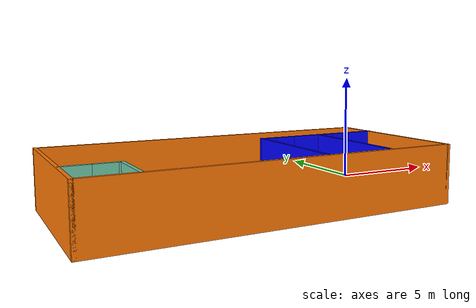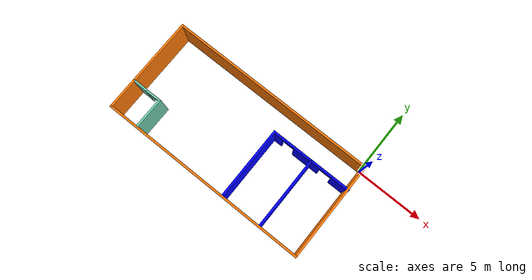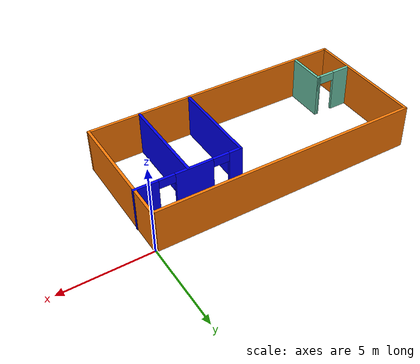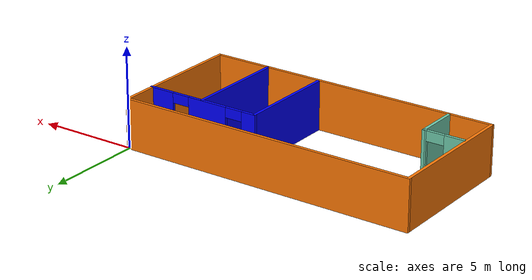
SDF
<?xml version='1.0'?>
<sdf version='1.6'>
  <model name='lab_space'>
    <pose frame=''>-7.48487 -3.5 0 0 -0 0</pose>
    <link name='Wall_0'>
      <collision name='Wall_0_Collision'>
        <geometry>
          <box>
            <size>15.15 0.15 2.5</size>
          </box>
        </geometry>
        <pose frame=''>0 0 1.25 0 -0 0</pose>
      </collision>
      <visual name='Wall_0_Visual'>
        <pose frame=''>0 0 1.25 0 -0 0</pose>
        <geometry>
          <box>
            <size>15.15 0.15 2.5</size>
          </box>
        </geometry>
        <material>
          <script>
            <uri>file://media/materials/scripts/gazebo.material</uri>
            <name>Gazebo/Grey</name>
          </script>
          <ambient>0.996078 0.47451 0.0196078 1</ambient>
        </material>
        <meta>
          <layer>0</layer>
        </meta>
      </visual>
      <pose frame=''>-0.015126 3.5 0 0 -0 3.14159</pose>
    </link>
    <link name='Wall_10'>
      <collision name='Wall_10_Collision'>
        <geometry>
          <box>
            <size>5.25 0.15 2.5</size>
          </box>
        </geometry>
        <pose frame=''>0 0 1.25 0 -0 0</pose>
      </collision>
      <visual name='Wall_10_Visual'>
        <pose frame=''>0 0 1.25 0 -0 0</pose>
        <geometry>
          <box>
            <size>5.25 0.15 2.5</size>
          </box>
        </geometry>
        <material>
          <script>
            <uri>file://media/materials/scripts/gazebo.material</uri>
            <name>Gazebo/Grey</name>
          </script>
          <ambient>0 0 1 1</ambient>
        </material>
        <meta>
          <layer>0</layer>
        </meta>
      </visual>
      <pose frame=''>1.6655 -0.845567 0 0 0 -1.5708</pose>
    </link>
    <link name='Wall_12'>
      <collision name='Wall_12_Collision'>
        <geometry>
          <box>
            <size>5.25 0.15 2.5</size>
          </box>
        </geometry>
        <pose frame=''>0 0 1.25 0 -0 0</pose>
      </collision>
      <visual name='Wall_12_Visual'>
        <pose frame=''>0 0 1.25 0 -0 0</pose>
        <geometry>
          <box>
            <size>5.25 0.15 2.5</size>
          </box>
        </geometry>
        <material>
          <script>
            <uri>file://media/materials/scripts/gazebo.material</uri>
            <name>Gazebo/Grey</name>
          </script>
          <ambient>0 0 1 1</ambient>
        </material>
        <meta>
          <layer>0</layer>
        </meta>
      </visual>
      <pose frame=''>4.6155 -0.885567 0 0 0 -1.5708</pose>
    </link>
    <link name='Wall_2'>
      <collision name='Wall_2_Collision'>
        <geometry>
          <box>
            <size>7.15 0.15 2.5</size>
          </box>
        </geometry>
        <pose frame=''>0 0 1.25 0 -0 0</pose>
      </collision>
      <visual name='Wall_2_Visual'>
        <pose frame=''>0 0 1.25 0 -0 0</pose>
        <geometry>
          <box>
            <size>7.15 0.15 2.5</size>
          </box>
        </geometry>
        <material>
          <script>
            <uri>file://media/materials/scripts/gazebo.material</uri>
            <name>Gazebo/Grey</name>
          </script>
          <ambient>0.996078 0.47451 0.0196078 1</ambient>
        </material>
        <meta>
          <layer>0</layer>
        </meta>
      </visual>
      <pose frame=''>-7.51513 0 0 0 0 -1.5708</pose>
    </link>
    <link name='Wall_3'>
      <collision name='Wall_3_Collision'>
        <geometry>
          <box>
            <size>15.1508 0.15 2.5</size>
          </box>
        </geometry>
        <pose frame=''>0 0 1.25 0 -0 0</pose>
      </collision>
      <visual name='Wall_3_Visual'>
        <pose frame=''>0 0 1.25 0 -0 0</pose>
        <geometry>
          <box>
            <size>15.1508 0.15 2.5</size>
          </box>
        </geometry>
        <material>
          <script>
            <uri>file://media/materials/scripts/gazebo.material</uri>
            <name>Gazebo/Grey</name>
          </script>
          <ambient>0.996078 0.47451 0.0196078 1</ambient>
        </material>
        <meta>
          <layer>0</layer>
        </meta>
      </visual>
      <pose frame=''>-0.015126 -3.5 0 0 -0 0</pose>
    </link>
    <link name='Wall_4'>
      <collision name='Wall_4_Collision'>
        <geometry>
          <box>
            <size>7.15 0.15 2.5</size>
          </box>
        </geometry>
        <pose frame=''>0 0 1.25 0 -0 0</pose>
      </collision>
      <visual name='Wall_4_Visual'>
        <pose frame=''>0 0 1.25 0 -0 0</pose>
        <geometry>
          <box>
            <size>7.15 0.15 2.5</size>
          </box>
        </geometry>
        <material>
          <script>
            <uri>file://media/materials/scripts/gazebo.material</uri>
            <name>Gazebo/Grey</name>
          </script>
          <ambient>0.996078 0.47451 0.0196078 1</ambient>
        </material>
        <meta>
          <layer>0</layer>
        </meta>
      </visual>
      <pose frame=''>7.48487 0 0 0 -0 1.5708</pose>
    </link>
    <link name='Wall_6'>
      <pose frame=''>-6.4145 -1.29557 0 0 -0 0</pose>
      <visual name='Wall_6_Visual_0'>
        <pose frame=''>-0.5625 0 1.25 0 -0 0</pose>
        <geometry>
          <box>
            <size>1.125 0.15 2.5</size>
          </box>
        </geometry>
        <material>
          <script>
            <uri>file://media/materials/scripts/gazebo.material</uri>
            <name>Gazebo/Grey</name>
          </script>
          <ambient>0.435294 0.796078 0.67451 1</ambient>
        </material>
        <meta>
          <layer>0</layer>
        </meta>
      </visual>
      <collision name='Wall_6_Collision_0'>
        <geometry>
          <box>
            <size>1.125 0.15 2.5</size>
          </box>
        </geometry>
        <pose frame=''>-0.5625 0 1.25 0 -0 0</pose>
      </collision>
      <visual name='Wall_6_Visual_1'>
        <pose frame=''>1.0125 0 1.25 0 -0 0</pose>
        <geometry>
          <box>
            <size>0.225 0.15 2.5</size>
          </box>
        </geometry>
        <material>
          <script>
            <uri>file://media/materials/scripts/gazebo.material</uri>
            <name>Gazebo/Grey</name>
          </script>
          <ambient>0.435294 0.796078 0.67451 1</ambient>
        </material>
        <meta>
          <layer>0</layer>
        </meta>
      </visual>
      <collision name='Wall_6_Collision_1'>
        <geometry>
          <box>
            <size>0.225 0.15 2.5</size>
          </box>
        </geometry>
        <pose frame=''>1.0125 0 1.25 0 -0 0</pose>
      </collision>
      <visual name='Wall_6_Visual_2'>
        <pose frame=''>0.45 0 2.25 0 -0 0</pose>
        <geometry>
          <box>
            <size>0.9 0.15 0.5</size>
          </box>
        </geometry>
        <material>
          <script>
            <uri>file://media/materials/scripts/gazebo.material</uri>
            <name>Gazebo/Grey</name>
          </script>
          <ambient>0.435294 0.796078 0.67451 1</ambient>
        </material>
        <meta>
          <layer>0</layer>
        </meta>
      </visual>
      <collision name='Wall_6_Collision_2'>
        <geometry>
          <box>
            <size>0.9 0.15 0.5</size>
          </box>
        </geometry>
        <pose frame=''>0.45 0 2.25 0 -0 0</pose>
      </collision>
    </link>
    <link name='Wall_7'>
      <collision name='Wall_7_Collision'>
        <geometry>
          <box>
            <size>2.25 0.15 2.5</size>
          </box>
        </geometry>
        <pose frame=''>0 0 1.25 0 -0 0</pose>
      </collision>
      <visual name='Wall_7_Visual'>
        <pose frame=''>0 0 1.25 0 -0 0</pose>
        <geometry>
          <box>
            <size>2.25 0.15 2.5</size>
          </box>
        </geometry>
        <material>
          <script>
            <uri>file://media/materials/scripts/gazebo.material</uri>
            <name>Gazebo/Grey</name>
          </script>
          <ambient>0.435294 0.796078 0.67451 1</ambient>
        </material>
        <meta>
          <layer>0</layer>
        </meta>
      </visual>
      <pose frame=''>-5.3645 -2.34557 0 0 0 -1.5708</pose>
    </link>
    <link name='Wall_9'>
      <pose frame=''>4.5905 1.70443 0 0 -0 3.14159</pose>
      <visual name='Wall_9_Visual_0'>
        <pose frame=''>-2.3275 0 1.25 0 -0 0</pose>
        <geometry>
          <box>
            <size>1.345 0.15 2.5</size>
          </box>
        </geometry>
        <material>
          <script>
            <uri>file://media/materials/scripts/gazebo.material</uri>
            <name>Gazebo/Grey</name>
          </script>
          <ambient>0 0 1 1</ambient>
        </material>
        <meta>
          <layer>0</layer>
        </meta>
      </visual>
      <collision name='Wall_9_Collision_0'>
        <geometry>
          <box>
            <size>1.345 0.15 2.5</size>
          </box>
        </geometry>
        <pose frame=''>-2.3275 0 1.25 0 -0 0</pose>
      </collision>
      <visual name='Wall_9_Visual_1'>
        <pose frame=''>0.295 0 1.25 0 -0 0</pose>
        <geometry>
          <box>
            <size>2.1 0.15 2.5</size>
          </box>
        </geometry>
        <material>
          <script>
            <uri>file://media/materials/scripts/gazebo.material</uri>
            <name>Gazebo/Grey</name>
          </script>
          <ambient>0 0 1 1</ambient>
        </material>
        <meta>
          <layer>0</layer>
        </meta>
      </visual>
      <collision name='Wall_9_Collision_1'>
        <geometry>
          <box>
            <size>2.1 0.15 2.5</size>
          </box>
        </geometry>
        <pose frame=''>0.295 0 1.25 0 -0 0</pose>
      </collision>
      <visual name='Wall_9_Visual_2'>
        <pose frame=''>2.6225 0 1.25 0 -0 0</pose>
        <geometry>
          <box>
            <size>0.755 0.15 2.5</size>
          </box>
        </geometry>
        <material>
          <script>
            <uri>file://media/materials/scripts/gazebo.material</uri>
            <name>Gazebo/Grey</name>
          </script>
          <ambient>0 0 1 1</ambient>
        </material>
        <meta>
          <layer>0</layer>
        </meta>
      </visual>
      <collision name='Wall_9_Collision_2'>
        <geometry>
          <box>
            <size>0.755 0.15 2.5</size>
          </box>
        </geometry>
        <pose frame=''>2.6225 0 1.25 0 -0 0</pose>
      </collision>
      <visual name='Wall_9_Visual_3'>
        <pose frame=''>-1.205 0 2.25 0 -0 0</pose>
        <geometry>
          <box>
            <size>0.9 0.15 0.5</size>
          </box>
        </geometry>
        <material>
          <script>
            <uri>file://media/materials/scripts/gazebo.material</uri>
            <name>Gazebo/Grey</name>
          </script>
          <ambient>0 0 1 1</ambient>
        </material>
        <meta>
          <layer>0</layer>
        </meta>
      </visual>
      <collision name='Wall_9_Collision_3'>
        <geometry>
          <box>
            <size>0.9 0.15 0.5</size>
          </box>
        </geometry>
        <pose frame=''>-1.205 0 2.25 0 -0 0</pose>
      </collision>
      <visual name='Wall_9_Visual_4'>
        <pose frame=''>1.795 0 2.25 0 -0 0</pose>
        <geometry>
          <box>
            <size>0.9 0.15 0.5</size>
          </box>
        </geometry>
        <material>
          <script>
            <uri>file://media/materials/scripts/gazebo.material</uri>
            <name>Gazebo/Grey</name>
          </script>
          <ambient>0 0 1 1</ambient>
        </material>
        <meta>
          <layer>0</layer>
        </meta>
      </visual>
      <collision name='Wall_9_Collision_4'>
        <geometry>
          <box>
            <size>0.9 0.15 0.5</size>
          </box>
        </geometry>
        <pose frame=''>1.795 0 2.25 0 -0 0</pose>
      </collision>
    </link>
    <static>1</static>
  </model>
</sdf>
